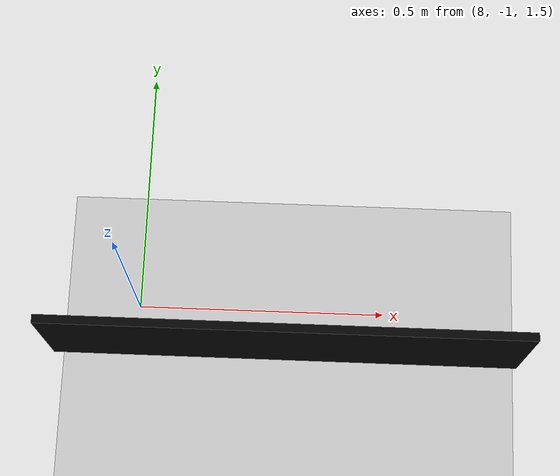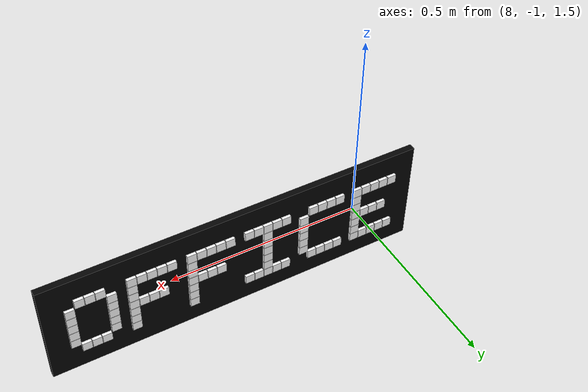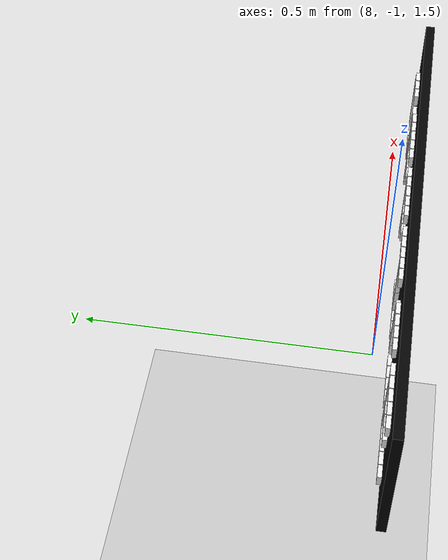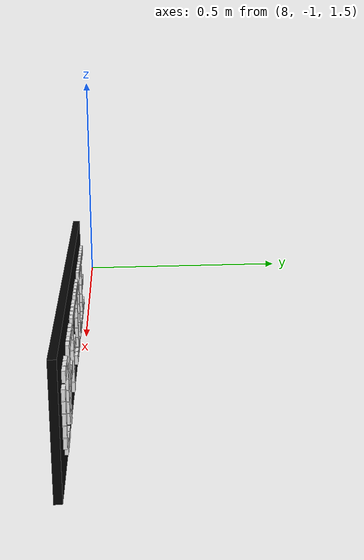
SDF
<sdf version="1.9">
 <world name="default">
  <model name="ground_plane">
   <static>true</static>
   <pose>5.15 0 -0.05 0 0 0</pose>
   <link name="body">
    <collision name="collision"><geometry><box><size>14.3 12 0.1</size></box></geometry></collision>
    <visual name="visual">
     <geometry><box><size>14.3 12 0.1</size></box></geometry>
     <material><ambient>0.8 0.8 0.8 1</ambient><diffuse>0.8 0.8 0.8 1</diffuse></material>
    </visual>
   </link>
  </model>
  <model name="readable_r3geo_base_r009_right_2_entrance_corridor">
   <static>true</static>
   <pose>8.3 -1.05 1.43 0 0 3.14159265359</pose>
   <link name="lettering">
    <visual name="backboard">
     <geometry><box><size>1.02 0.018 0.3</size></box></geometry>
     <material>
      <ambient>.015 .015 .015 1</ambient>
      <diffuse>.015 .015 .015 1</diffuse>
      <emissive>.015 .015 .015 1</emissive>
     </material>
     <cast_shadows>false</cast_shadows>
    </visual>
    <visual name="letter_0_0_1">
     <pose>-0.416 -0.014 0.078 0 0 0</pose>
     <geometry><box><size>0.024439999999999996 0.008 0.024439999999999996</size></box></geometry>
     <material>
      <ambient>.96 .96 .96 1</ambient>
      <diffuse>.96 .96 .96 1</diffuse>
      <emissive>.96 .96 .96 1</emissive>
     </material>
     <cast_shadows>false</cast_shadows>
    </visual>
    <visual name="letter_0_0_2">
     <pose>-0.39 -0.014 0.078 0 0 0</pose>
     <geometry><box><size>0.024439999999999996 0.008 0.024439999999999996</size></box></geometry>
     <material>
      <ambient>.96 .96 .96 1</ambient>
      <diffuse>.96 .96 .96 1</diffuse>
      <emissive>.96 .96 .96 1</emissive>
     </material>
     <cast_shadows>false</cast_shadows>
    </visual>
    <visual name="letter_0_0_3">
     <pose>-0.364 -0.014 0.078 0 0 0</pose>
     <geometry><box><size>0.024439999999999996 0.008 0.024439999999999996</size></box></geometry>
     <material>
      <ambient>.96 .96 .96 1</ambient>
      <diffuse>.96 .96 .96 1</diffuse>
      <emissive>.96 .96 .96 1</emissive>
     </material>
     <cast_shadows>false</cast_shadows>
    </visual>
    <visual name="letter_0_1_0">
     <pose>-0.442 -0.014 0.052 0 0 0</pose>
     <geometry><box><size>0.024439999999999996 0.008 0.024439999999999996</size></box></geometry>
     <material>
      <ambient>.96 .96 .96 1</ambient>
      <diffuse>.96 .96 .96 1</diffuse>
      <emissive>.96 .96 .96 1</emissive>
     </material>
     <cast_shadows>false</cast_shadows>
    </visual>
    <visual name="letter_0_1_4">
     <pose>-0.338 -0.014 0.052 0 0 0</pose>
     <geometry><box><size>0.024439999999999996 0.008 0.024439999999999996</size></box></geometry>
     <material>
      <ambient>.96 .96 .96 1</ambient>
      <diffuse>.96 .96 .96 1</diffuse>
      <emissive>.96 .96 .96 1</emissive>
     </material>
     <cast_shadows>false</cast_shadows>
    </visual>
    <visual name="letter_0_2_0">
     <pose>-0.442 -0.014 0.026 0 0 0</pose>
     <geometry><box><size>0.024439999999999996 0.008 0.024439999999999996</size></box></geometry>
     <material>
      <ambient>.96 .96 .96 1</ambient>
      <diffuse>.96 .96 .96 1</diffuse>
      <emissive>.96 .96 .96 1</emissive>
     </material>
     <cast_shadows>false</cast_shadows>
    </visual>
    <visual name="letter_0_2_4">
     <pose>-0.338 -0.014 0.026 0 0 0</pose>
     <geometry><box><size>0.024439999999999996 0.008 0.024439999999999996</size></box></geometry>
     <material>
      <ambient>.96 .96 .96 1</ambient>
      <diffuse>.96 .96 .96 1</diffuse>
      <emissive>.96 .96 .96 1</emissive>
     </material>
     <cast_shadows>false</cast_shadows>
    </visual>
    <visual name="letter_0_3_0">
     <pose>-0.442 -0.014 0 0 0 0</pose>
     <geometry><box><size>0.024439999999999996 0.008 0.024439999999999996</size></box></geometry>
     <material>
      <ambient>.96 .96 .96 1</ambient>
      <diffuse>.96 .96 .96 1</diffuse>
      <emissive>.96 .96 .96 1</emissive>
     </material>
     <cast_shadows>false</cast_shadows>
    </visual>
    <visual name="letter_0_3_4">
     <pose>-0.338 -0.014 0 0 0 0</pose>
     <geometry><box><size>0.024439999999999996 0.008 0.024439999999999996</size></box></geometry>
     <material>
      <ambient>.96 .96 .96 1</ambient>
      <diffuse>.96 .96 .96 1</diffuse>
      <emissive>.96 .96 .96 1</emissive>
     </material>
     <cast_shadows>false</cast_shadows>
    </visual>
    <visual name="letter_0_4_0">
     <pose>-0.442 -0.014 -0.026 0 0 0</pose>
     <geometry><box><size>0.024439999999999996 0.008 0.024439999999999996</size></box></geometry>
     <material>
      <ambient>.96 .96 .96 1</ambient>
      <diffuse>.96 .96 .96 1</diffuse>
      <emissive>.96 .96 .96 1</emissive>
     </material>
     <cast_shadows>false</cast_shadows>
    </visual>
    <visual name="letter_0_4_4">
     <pose>-0.338 -0.014 -0.026 0 0 0</pose>
     <geometry><box><size>0.024439999999999996 0.008 0.024439999999999996</size></box></geometry>
     <material>
      <ambient>.96 .96 .96 1</ambient>
      <diffuse>.96 .96 .96 1</diffuse>
      <emissive>.96 .96 .96 1</emissive>
     </material>
     <cast_shadows>false</cast_shadows>
    </visual>
    <visual name="letter_0_5_0">
     <pose>-0.442 -0.014 -0.052 0 0 0</pose>
     <geometry><box><size>0.024439999999999996 0.008 0.024439999999999996</size></box></geometry>
     <material>
      <ambient>.96 .96 .96 1</ambient>
      <diffuse>.96 .96 .96 1</diffuse>
      <emissive>.96 .96 .96 1</emissive>
     </material>
     <cast_shadows>false</cast_shadows>
    </visual>
    <visual name="letter_0_5_4">
     <pose>-0.338 -0.014 -0.052 0 0 0</pose>
     <geometry><box><size>0.024439999999999996 0.008 0.024439999999999996</size></box></geometry>
     <material>
      <ambient>.96 .96 .96 1</ambient>
      <diffuse>.96 .96 .96 1</diffuse>
      <emissive>.96 .96 .96 1</emissive>
     </material>
     <cast_shadows>false</cast_shadows>
    </visual>
    <visual name="letter_0_6_1">
     <pose>-0.416 -0.014 -0.078 0 0 0</pose>
     <geometry><box><size>0.024439999999999996 0.008 0.024439999999999996</size></box></geometry>
     <material>
      <ambient>.96 .96 .96 1</ambient>
      <diffuse>.96 .96 .96 1</diffuse>
      <emissive>.96 .96 .96 1</emissive>
     </material>
     <cast_shadows>false</cast_shadows>
    </visual>
    <visual name="letter_0_6_2">
     <pose>-0.39 -0.014 -0.078 0 0 0</pose>
     <geometry><box><size>0.024439999999999996 0.008 0.024439999999999996</size></box></geometry>
     <material>
      <ambient>.96 .96 .96 1</ambient>
      <diffuse>.96 .96 .96 1</diffuse>
      <emissive>.96 .96 .96 1</emissive>
     </material>
     <cast_shadows>false</cast_shadows>
    </visual>
    <visual name="letter_0_6_3">
     <pose>-0.364 -0.014 -0.078 0 0 0</pose>
     <geometry><box><size>0.024439999999999996 0.008 0.024439999999999996</size></box></geometry>
     <material>
      <ambient>.96 .96 .96 1</ambient>
      <diffuse>.96 .96 .96 1</diffuse>
      <emissive>.96 .96 .96 1</emissive>
     </material>
     <cast_shadows>false</cast_shadows>
    </visual>
    <visual name="letter_1_0_0">
     <pose>-0.286 -0.014 0.078 0 0 0</pose>
     <geometry><box><size>0.024439999999999996 0.008 0.024439999999999996</size></box></geometry>
     <material>
      <ambient>.96 .96 .96 1</ambient>
      <diffuse>.96 .96 .96 1</diffuse>
      <emissive>.96 .96 .96 1</emissive>
     </material>
     <cast_shadows>false</cast_shadows>
    </visual>
    <visual name="letter_1_0_1">
     <pose>-0.26 -0.014 0.078 0 0 0</pose>
     <geometry><box><size>0.024439999999999996 0.008 0.024439999999999996</size></box></geometry>
     <material>
      <ambient>.96 .96 .96 1</ambient>
      <diffuse>.96 .96 .96 1</diffuse>
      <emissive>.96 .96 .96 1</emissive>
     </material>
     <cast_shadows>false</cast_shadows>
    </visual>
    <visual name="letter_1_0_2">
     <pose>-0.234 -0.014 0.078 0 0 0</pose>
     <geometry><box><size>0.024439999999999996 0.008 0.024439999999999996</size></box></geometry>
     <material>
      <ambient>.96 .96 .96 1</ambient>
      <diffuse>.96 .96 .96 1</diffuse>
      <emissive>.96 .96 .96 1</emissive>
     </material>
     <cast_shadows>false</cast_shadows>
    </visual>
    <visual name="letter_1_0_3">
     <pose>-0.208 -0.014 0.078 0 0 0</pose>
     <geometry><box><size>0.024439999999999996 0.008 0.024439999999999996</size></box></geometry>
     <material>
      <ambient>.96 .96 .96 1</ambient>
      <diffuse>.96 .96 .96 1</diffuse>
      <emissive>.96 .96 .96 1</emissive>
     </material>
     <cast_shadows>false</cast_shadows>
    </visual>
    <visual name="letter_1_0_4">
     <pose>-0.182 -0.014 0.078 0 0 0</pose>
     <geometry><box><size>0.024439999999999996 0.008 0.024439999999999996</size></box></geometry>
     <material>
      <ambient>.96 .96 .96 1</ambient>
      <diffuse>.96 .96 .96 1</diffuse>
      <emissive>.96 .96 .96 1</emissive>
     </material>
     <cast_shadows>false</cast_shadows>
    </visual>
    <visual name="letter_1_1_0">
     <pose>-0.286 -0.014 0.052 0 0 0</pose>
     <geometry><box><size>0.024439999999999996 0.008 0.024439999999999996</size></box></geometry>
     <material>
      <ambient>.96 .96 .96 1</ambient>
      <diffuse>.96 .96 .96 1</diffuse>
      <emissive>.96 .96 .96 1</emissive>
     </material>
     <cast_shadows>false</cast_shadows>
    </visual>
    <visual name="letter_1_2_0">
     <pose>-0.286 -0.014 0.026 0 0 0</pose>
     <geometry><box><size>0.024439999999999996 0.008 0.024439999999999996</size></box></geometry>
     <material>
      <ambient>.96 .96 .96 1</ambient>
      <diffuse>.96 .96 .96 1</diffuse>
      <emissive>.96 .96 .96 1</emissive>
     </material>
     <cast_shadows>false</cast_shadows>
    </visual>
    <visual name="letter_1_3_0">
     <pose>-0.286 -0.014 0 0 0 0</pose>
     <geometry><box><size>0.024439999999999996 0.008 0.024439999999999996</size></box></geometry>
     <material>
      <ambient>.96 .96 .96 1</ambient>
      <diffuse>.96 .96 .96 1</diffuse>
      <emissive>.96 .96 .96 1</emissive>
     </material>
     <cast_shadows>false</cast_shadows>
    </visual>
    <visual name="letter_1_3_1">
     <pose>-0.26 -0.014 0 0 0 0</pose>
     <geometry><box><size>0.024439999999999996 0.008 0.024439999999999996</size></box></geometry>
     <material>
      <ambient>.96 .96 .96 1</ambient>
      <diffuse>.96 .96 .96 1</diffuse>
      <emissive>.96 .96 .96 1</emissive>
     </material>
     <cast_shadows>false</cast_shadows>
    </visual>
    <visual name="letter_1_3_2">
     <pose>-0.234 -0.014 0 0 0 0</pose>
     <geometry><box><size>0.024439999999999996 0.008 0.024439999999999996</size></box></geometry>
     <material>
      <ambient>.96 .96 .96 1</ambient>
      <diffuse>.96 .96 .96 1</diffuse>
      <emissive>.96 .96 .96 1</emissive>
     </material>
     <cast_shadows>false</cast_shadows>
    </visual>
    <visual name="letter_1_3_3">
     <pose>-0.208 -0.014 0 0 0 0</pose>
     <geometry><box><size>0.024439999999999996 0.008 0.024439999999999996</size></box></geometry>
     <material>
      <ambient>.96 .96 .96 1</ambient>
      <diffuse>.96 .96 .96 1</diffuse>
      <emissive>.96 .96 .96 1</emissive>
     </material>
     <cast_shadows>false</cast_shadows>
    </visual>
    <visual name="letter_1_4_0">
     <pose>-0.286 -0.014 -0.026 0 0 0</pose>
     <geometry><box><size>0.024439999999999996 0.008 0.024439999999999996</size></box></geometry>
     <material>
      <ambient>.96 .96 .96 1</ambient>
      <diffuse>.96 .96 .96 1</diffuse>
      <emissive>.96 .96 .96 1</emissive>
     </material>
     <cast_shadows>false</cast_shadows>
    </visual>
    <visual name="letter_1_5_0">
     <pose>-0.286 -0.014 -0.052 0 0 0</pose>
     <geometry><box><size>0.024439999999999996 0.008 0.024439999999999996</size></box></geometry>
     <material>
      <ambient>.96 .96 .96 1</ambient>
      <diffuse>.96 .96 .96 1</diffuse>
      <emissive>.96 .96 .96 1</emissive>
     </material>
     <cast_shadows>false</cast_shadows>
    </visual>
    <visual name="letter_1_6_0">
     <pose>-0.286 -0.014 -0.078 0 0 0</pose>
     <geometry><box><size>0.024439999999999996 0.008 0.024439999999999996</size></box></geometry>
     <material>
      <ambient>.96 .96 .96 1</ambient>
      <diffuse>.96 .96 .96 1</diffuse>
      <emissive>.96 .96 .96 1</emissive>
     </material>
     <cast_shadows>false</cast_shadows>
    </visual>
    <visual name="letter_2_0_0">
     <pose>-0.13 -0.014 0.078 0 0 0</pose>
     <geometry><box><size>0.024439999999999996 0.008 0.024439999999999996</size></box></geometry>
     <material>
      <ambient>.96 .96 .96 1</ambient>
      <diffuse>.96 .96 .96 1</diffuse>
      <emissive>.96 .96 .96 1</emissive>
     </material>
     <cast_shadows>false</cast_shadows>
    </visual>
    <visual name="letter_2_0_1">
     <pose>-0.104 -0.014 0.078 0 0 0</pose>
     <geometry><box><size>0.024439999999999996 0.008 0.024439999999999996</size></box></geometry>
     <material>
      <ambient>.96 .96 .96 1</ambient>
      <diffuse>.96 .96 .96 1</diffuse>
      <emissive>.96 .96 .96 1</emissive>
     </material>
     <cast_shadows>false</cast_shadows>
    </visual>
    <visual name="letter_2_0_2">
     <pose>-0.078 -0.014 0.078 0 0 0</pose>
     <geometry><box><size>0.024439999999999996 0.008 0.024439999999999996</size></box></geometry>
     <material>
      <ambient>.96 .96 .96 1</ambient>
      <diffuse>.96 .96 .96 1</diffuse>
      <emissive>.96 .96 .96 1</emissive>
     </material>
     <cast_shadows>false</cast_shadows>
    </visual>
    <visual name="letter_2_0_3">
     <pose>-0.052 -0.014 0.078 0 0 0</pose>
     <geometry><box><size>0.024439999999999996 0.008 0.024439999999999996</size></box></geometry>
     <material>
      <ambient>.96 .96 .96 1</ambient>
      <diffuse>.96 .96 .96 1</diffuse>
      <emissive>.96 .96 .96 1</emissive>
     </material>
     <cast_shadows>false</cast_shadows>
    </visual>
    <visual name="letter_2_0_4">
     <pose>-0.026 -0.014 0.078 0 0 0</pose>
     <geometry><box><size>0.024439999999999996 0.008 0.024439999999999996</size></box></geometry>
     <material>
      <ambient>.96 .96 .96 1</ambient>
      <diffuse>.96 .96 .96 1</diffuse>
      <emissive>.96 .96 .96 1</emissive>
     </material>
     <cast_shadows>false</cast_shadows>
    </visual>
    <visual name="letter_2_1_0">
     <pose>-0.13 -0.014 0.052 0 0 0</pose>
     <geometry><box><size>0.024439999999999996 0.008 0.024439999999999996</size></box></geometry>
     <material>
      <ambient>.96 .96 .96 1</ambient>
      <diffuse>.96 .96 .96 1</diffuse>
      <emissive>.96 .96 .96 1</emissive>
     </material>
     <cast_shadows>false</cast_shadows>
    </visual>
    <visual name="letter_2_2_0">
     <pose>-0.13 -0.014 0.026 0 0 0</pose>
     <geometry><box><size>0.024439999999999996 0.008 0.024439999999999996</size></box></geometry>
     <material>
      <ambient>.96 .96 .96 1</ambient>
      <diffuse>.96 .96 .96 1</diffuse>
      <emissive>.96 .96 .96 1</emissive>
     </material>
     <cast_shadows>false</cast_shadows>
    </visual>
    <visual name="letter_2_3_0">
     <pose>-0.13 -0.014 0 0 0 0</pose>
     <geometry><box><size>0.024439999999999996 0.008 0.024439999999999996</size></box></geometry>
     <material>
      <ambient>.96 .96 .96 1</ambient>
      <diffuse>.96 .96 .96 1</diffuse>
      <emissive>.96 .96 .96 1</emissive>
     </material>
     <cast_shadows>false</cast_shadows>
    </visual>
    <visual name="letter_2_3_1">
     <pose>-0.104 -0.014 0 0 0 0</pose>
     <geometry><box><size>0.024439999999999996 0.008 0.024439999999999996</size></box></geometry>
     <material>
      <ambient>.96 .96 .96 1</ambient>
      <diffuse>.96 .96 .96 1</diffuse>
      <emissive>.96 .96 .96 1</emissive>
     </material>
     <cast_shadows>false</cast_shadows>
    </visual>
    <visual name="letter_2_3_2">
     <pose>-0.078 -0.014 0 0 0 0</pose>
     <geometry><box><size>0.024439999999999996 0.008 0.024439999999999996</size></box></geometry>
     <material>
      <ambient>.96 .96 .96 1</ambient>
      <diffuse>.96 .96 .96 1</diffuse>
      <emissive>.96 .96 .96 1</emissive>
     </material>
     <cast_shadows>false</cast_shadows>
    </visual>
    <visual name="letter_2_3_3">
     <pose>-0.052 -0.014 0 0 0 0</pose>
     <geometry><box><size>0.024439999999999996 0.008 0.024439999999999996</size></box></geometry>
     <material>
      <ambient>.96 .96 .96 1</ambient>
      <diffuse>.96 .96 .96 1</diffuse>
      <emissive>.96 .96 .96 1</emissive>
     </material>
     <cast_shadows>false</cast_shadows>
    </visual>
    <visual name="letter_2_4_0">
     <pose>-0.13 -0.014 -0.026 0 0 0</pose>
     <geometry><box><size>0.024439999999999996 0.008 0.024439999999999996</size></box></geometry>
     <material>
      <ambient>.96 .96 .96 1</ambient>
      <diffuse>.96 .96 .96 1</diffuse>
      <emissive>.96 .96 .96 1</emissive>
     </material>
     <cast_shadows>false</cast_shadows>
    </visual>
    <visual name="letter_2_5_0">
     <pose>-0.13 -0.014 -0.052 0 0 0</pose>
     <geometry><box><size>0.024439999999999996 0.008 0.024439999999999996</size></box></geometry>
     <material>
      <ambient>.96 .96 .96 1</ambient>
      <diffuse>.96 .96 .96 1</diffuse>
      <emissive>.96 .96 .96 1</emissive>
     </material>
     <cast_shadows>false</cast_shadows>
    </visual>
    <visual name="letter_2_6_0">
     <pose>-0.13 -0.014 -0.078 0 0 0</pose>
     <geometry><box><size>0.024439999999999996 0.008 0.024439999999999996</size></box></geometry>
     <material>
      <ambient>.96 .96 .96 1</ambient>
      <diffuse>.96 .96 .96 1</diffuse>
      <emissive>.96 .96 .96 1</emissive>
     </material>
     <cast_shadows>false</cast_shadows>
    </visual>
    <visual name="letter_3_0_0">
     <pose>0.026 -0.014 0.078 0 0 0</pose>
     <geometry><box><size>0.024439999999999996 0.008 0.024439999999999996</size></box></geometry>
     <material>
      <ambient>.96 .96 .96 1</ambient>
      <diffuse>.96 .96 .96 1</diffuse>
      <emissive>.96 .96 .96 1</emissive>
     </material>
     <cast_shadows>false</cast_shadows>
    </visual>
    <visual name="letter_3_0_1">
     <pose>0.052 -0.014 0.078 0 0 0</pose>
     <geometry><box><size>0.024439999999999996 0.008 0.024439999999999996</size></box></geometry>
     <material>
      <ambient>.96 .96 .96 1</ambient>
      <diffuse>.96 .96 .96 1</diffuse>
      <emissive>.96 .96 .96 1</emissive>
     </material>
     <cast_shadows>false</cast_shadows>
    </visual>
    <visual name="letter_3_0_2">
     <pose>0.078 -0.014 0.078 0 0 0</pose>
     <geometry><box><size>0.024439999999999996 0.008 0.024439999999999996</size></box></geometry>
     <material>
      <ambient>.96 .96 .96 1</ambient>
      <diffuse>.96 .96 .96 1</diffuse>
      <emissive>.96 .96 .96 1</emissive>
     </material>
     <cast_shadows>false</cast_shadows>
    </visual>
    <visual name="letter_3_0_3">
     <pose>0.104 -0.014 0.078 0 0 0</pose>
     <geometry><box><size>0.024439999999999996 0.008 0.024439999999999996</size></box></geometry>
     <material>
      <ambient>.96 .96 .96 1</ambient>
      <diffuse>.96 .96 .96 1</diffuse>
      <emissive>.96 .96 .96 1</emissive>
     </material>
     <cast_shadows>false</cast_shadows>
    </visual>
    <visual name="letter_3_0_4">
     <pose>0.13 -0.014 0.078 0 0 0</pose>
     <geometry><box><size>0.024439999999999996 0.008 0.024439999999999996</size></box></geometry>
     <material>
      <ambient>.96 .96 .96 1</ambient>
      <diffuse>.96 .96 .96 1</diffuse>
      <emissive>.96 .96 .96 1</emissive>
     </material>
     <cast_shadows>false</cast_shadows>
    </visual>
    <visual name="letter_3_1_2">
     <pose>0.078 -0.014 0.052 0 0 0</pose>
     <geometry><box><size>0.024439999999999996 0.008 0.024439999999999996</size></box></geometry>
     <material>
      <ambient>.96 .96 .96 1</ambient>
      <diffuse>.96 .96 .96 1</diffuse>
      <emissive>.96 .96 .96 1</emissive>
     </material>
     <cast_shadows>false</cast_shadows>
    </visual>
    <visual name="letter_3_2_2">
     <pose>0.078 -0.014 0.026 0 0 0</pose>
     <geometry><box><size>0.024439999999999996 0.008 0.024439999999999996</size></box></geometry>
     <material>
      <ambient>.96 .96 .96 1</ambient>
      <diffuse>.96 .96 .96 1</diffuse>
      <emissive>.96 .96 .96 1</emissive>
     </material>
     <cast_shadows>false</cast_shadows>
    </visual>
    <visual name="letter_3_3_2">
     <pose>0.078 -0.014 0 0 0 0</pose>
     <geometry><box><size>0.024439999999999996 0.008 0.024439999999999996</size></box></geometry>
     <material>
      <ambient>.96 .96 .96 1</ambient>
      <diffuse>.96 .96 .96 1</diffuse>
      <emissive>.96 .96 .96 1</emissive>
     </material>
     <cast_shadows>false</cast_shadows>
    </visual>
    <visual name="letter_3_4_2">
     <pose>0.078 -0.014 -0.026 0 0 0</pose>
     <geometry><box><size>0.024439999999999996 0.008 0.024439999999999996</size></box></geometry>
     <material>
      <ambient>.96 .96 .96 1</ambient>
      <diffuse>.96 .96 .96 1</diffuse>
      <emissive>.96 .96 .96 1</emissive>
     </material>
     <cast_shadows>false</cast_shadows>
    </visual>
    <visual name="letter_3_5_2">
     <pose>0.078 -0.014 -0.052 0 0 0</pose>
     <geometry><box><size>0.024439999999999996 0.008 0.024439999999999996</size></box></geometry>
     <material>
      <ambient>.96 .96 .96 1</ambient>
      <diffuse>.96 .96 .96 1</diffuse>
      <emissive>.96 .96 .96 1</emissive>
     </material>
     <cast_shadows>false</cast_shadows>
    </visual>
    <visual name="letter_3_6_0">
     <pose>0.026 -0.014 -0.078 0 0 0</pose>
     <geometry><box><size>0.024439999999999996 0.008 0.024439999999999996</size></box></geometry>
     <material>
      <ambient>.96 .96 .96 1</ambient>
      <diffuse>.96 .96 .96 1</diffuse>
      <emissive>.96 .96 .96 1</emissive>
     </material>
     <cast_shadows>false</cast_shadows>
    </visual>
    <visual name="letter_3_6_1">
     <pose>0.052 -0.014 -0.078 0 0 0</pose>
     <geometry><box><size>0.024439999999999996 0.008 0.024439999999999996</size></box></geometry>
     <material>
      <ambient>.96 .96 .96 1</ambient>
      <diffuse>.96 .96 .96 1</diffuse>
      <emissive>.96 .96 .96 1</emissive>
     </material>
     <cast_shadows>false</cast_shadows>
    </visual>
    <visual name="letter_3_6_2">
     <pose>0.078 -0.014 -0.078 0 0 0</pose>
     <geometry><box><size>0.024439999999999996 0.008 0.024439999999999996</size></box></geometry>
     <material>
      <ambient>.96 .96 .96 1</ambient>
      <diffuse>.96 .96 .96 1</diffuse>
      <emissive>.96 .96 .96 1</emissive>
     </material>
     <cast_shadows>false</cast_shadows>
    </visual>
    <visual name="letter_3_6_3">
     <pose>0.104 -0.014 -0.078 0 0 0</pose>
     <geometry><box><size>0.024439999999999996 0.008 0.024439999999999996</size></box></geometry>
     <material>
      <ambient>.96 .96 .96 1</ambient>
      <diffuse>.96 .96 .96 1</diffuse>
      <emissive>.96 .96 .96 1</emissive>
     </material>
     <cast_shadows>false</cast_shadows>
    </visual>
    <visual name="letter_3_6_4">
     <pose>0.13 -0.014 -0.078 0 0 0</pose>
     <geometry><box><size>0.024439999999999996 0.008 0.024439999999999996</size></box></geometry>
     <material>
      <ambient>.96 .96 .96 1</ambient>
      <diffuse>.96 .96 .96 1</diffuse>
      <emissive>.96 .96 .96 1</emissive>
     </material>
     <cast_shadows>false</cast_shadows>
    </visual>
    <visual name="letter_4_0_1">
     <pose>0.208 -0.014 0.078 0 0 0</pose>
     <geometry><box><size>0.024439999999999996 0.008 0.024439999999999996</size></box></geometry>
     <material>
      <ambient>.96 .96 .96 1</ambient>
      <diffuse>.96 .96 .96 1</diffuse>
      <emissive>.96 .96 .96 1</emissive>
     </material>
     <cast_shadows>false</cast_shadows>
    </visual>
    <visual name="letter_4_0_2">
     <pose>0.234 -0.014 0.078 0 0 0</pose>
     <geometry><box><size>0.024439999999999996 0.008 0.024439999999999996</size></box></geometry>
     <material>
      <ambient>.96 .96 .96 1</ambient>
      <diffuse>.96 .96 .96 1</diffuse>
      <emissive>.96 .96 .96 1</emissive>
     </material>
     <cast_shadows>false</cast_shadows>
    </visual>
    <visual name="letter_4_0_3">
     <pose>0.26 -0.014 0.078 0 0 0</pose>
     <geometry><box><size>0.024439999999999996 0.008 0.024439999999999996</size></box></geometry>
     <material>
      <ambient>.96 .96 .96 1</ambient>
      <diffuse>.96 .96 .96 1</diffuse>
      <emissive>.96 .96 .96 1</emissive>
     </material>
     <cast_shadows>false</cast_shadows>
    </visual>
    <visual name="letter_4_0_4">
     <pose>0.286 -0.014 0.078 0 0 0</pose>
     <geometry><box><size>0.024439999999999996 0.008 0.024439999999999996</size></box></geometry>
     <material>
      <ambient>.96 .96 .96 1</ambient>
      <diffuse>.96 .96 .96 1</diffuse>
      <emissive>.96 .96 .96 1</emissive>
     </material>
     <cast_shadows>false</cast_shadows>
    </visual>
    <visual name="letter_4_1_0">
     <pose>0.182 -0.014 0.052 0 0 0</pose>
     <geometry><box><size>0.024439999999999996 0.008 0.024439999999999996</size></box></geometry>
     <material>
      <ambient>.96 .96 .96 1</ambient>
      <diffuse>.96 .96 .96 1</diffuse>
      <emissive>.96 .96 .96 1</emissive>
     </material>
     <cast_shadows>false</cast_shadows>
    </visual>
    <visual name="letter_4_2_0">
     <pose>0.182 -0.014 0.026 0 0 0</pose>
     <geometry><box><size>0.024439999999999996 0.008 0.024439999999999996</size></box></geometry>
     <material>
      <ambient>.96 .96 .96 1</ambient>
      <diffuse>.96 .96 .96 1</diffuse>
      <emissive>.96 .96 .96 1</emissive>
     </material>
     <cast_shadows>false</cast_shadows>
    </visual>
    <visual name="letter_4_3_0">
     <pose>0.182 -0.014 0 0 0 0</pose>
     <geometry><box><size>0.024439999999999996 0.008 0.024439999999999996</size></box></geometry>
     <material>
      <ambient>.96 .96 .96 1</ambient>
      <diffuse>.96 .96 .96 1</diffuse>
      <emissive>.96 .96 .96 1</emissive>
     </material>
     <cast_shadows>false</cast_shadows>
    </visual>
    <visual name="letter_4_4_0">
     <pose>0.182 -0.014 -0.026 0 0 0</pose>
     <geometry><box><size>0.024439999999999996 0.008 0.024439999999999996</size></box></geometry>
     <material>
      <ambient>.96 .96 .96 1</ambient>
      <diffuse>.96 .96 .96 1</diffuse>
      <emissive>.96 .96 .96 1</emissive>
     </material>
     <cast_shadows>false</cast_shadows>
    </visual>
    <visual name="letter_4_5_0">
     <pose>0.182 -0.014 -0.052 0 0 0</pose>
     <geometry><box><size>0.024439999999999996 0.008 0.024439999999999996</size></box></geometry>
     <material>
      <ambient>.96 .96 .96 1</ambient>
      <diffuse>.96 .96 .96 1</diffuse>
      <emissive>.96 .96 .96 1</emissive>
     </material>
     <cast_shadows>false</cast_shadows>
    </visual>
    <visual name="letter_4_6_1">
     <pose>0.208 -0.014 -0.078 0 0 0</pose>
     <geometry><box><size>0.024439999999999996 0.008 0.024439999999999996</size></box></geometry>
     <material>
      <ambient>.96 .96 .96 1</ambient>
      <diffuse>.96 .96 .96 1</diffuse>
      <emissive>.96 .96 .96 1</emissive>
     </material>
     <cast_shadows>false</cast_shadows>
    </visual>
    <visual name="letter_4_6_2">
     <pose>0.234 -0.014 -0.078 0 0 0</pose>
     <geometry><box><size>0.024439999999999996 0.008 0.024439999999999996</size></box></geometry>
     <material>
      <ambient>.96 .96 .96 1</ambient>
      <diffuse>.96 .96 .96 1</diffuse>
      <emissive>.96 .96 .96 1</emissive>
     </material>
     <cast_shadows>false</cast_shadows>
    </visual>
    <visual name="letter_4_6_3">
     <pose>0.26 -0.014 -0.078 0 0 0</pose>
     <geometry><box><size>0.024439999999999996 0.008 0.024439999999999996</size></box></geometry>
     <material>
      <ambient>.96 .96 .96 1</ambient>
      <diffuse>.96 .96 .96 1</diffuse>
      <emissive>.96 .96 .96 1</emissive>
     </material>
     <cast_shadows>false</cast_shadows>
    </visual>
    <visual name="letter_4_6_4">
     <pose>0.286 -0.014 -0.078 0 0 0</pose>
     <geometry><box><size>0.024439999999999996 0.008 0.024439999999999996</size></box></geometry>
     <material>
      <ambient>.96 .96 .96 1</ambient>
      <diffuse>.96 .96 .96 1</diffuse>
      <emissive>.96 .96 .96 1</emissive>
     </material>
     <cast_shadows>false</cast_shadows>
    </visual>
    <visual name="letter_5_0_0">
     <pose>0.338 -0.014 0.078 0 0 0</pose>
     <geometry><box><size>0.024439999999999996 0.008 0.024439999999999996</size></box></geometry>
     <material>
      <ambient>.96 .96 .96 1</ambient>
      <diffuse>.96 .96 .96 1</diffuse>
      <emissive>.96 .96 .96 1</emissive>
     </material>
     <cast_shadows>false</cast_shadows>
    </visual>
    <visual name="letter_5_0_1">
     <pose>0.364 -0.014 0.078 0 0 0</pose>
     <geometry><box><size>0.024439999999999996 0.008 0.024439999999999996</size></box></geometry>
     <material>
      <ambient>.96 .96 .96 1</ambient>
      <diffuse>.96 .96 .96 1</diffuse>
      <emissive>.96 .96 .96 1</emissive>
     </material>
     <cast_shadows>false</cast_shadows>
    </visual>
    <visual name="letter_5_0_2">
     <pose>0.39 -0.014 0.078 0 0 0</pose>
     <geometry><box><size>0.024439999999999996 0.008 0.024439999999999996</size></box></geometry>
     <material>
      <ambient>.96 .96 .96 1</ambient>
      <diffuse>.96 .96 .96 1</diffuse>
      <emissive>.96 .96 .96 1</emissive>
     </material>
     <cast_shadows>false</cast_shadows>
    </visual>
    <visual name="letter_5_0_3">
     <pose>0.416 -0.014 0.078 0 0 0</pose>
     <geometry><box><size>0.024439999999999996 0.008 0.024439999999999996</size></box></geometry>
     <material>
      <ambient>.96 .96 .96 1</ambient>
      <diffuse>.96 .96 .96 1</diffuse>
      <emissive>.96 .96 .96 1</emissive>
     </material>
     <cast_shadows>false</cast_shadows>
    </visual>
    <visual name="letter_5_0_4">
     <pose>0.442 -0.014 0.078 0 0 0</pose>
     <geometry><box><size>0.024439999999999996 0.008 0.024439999999999996</size></box></geometry>
     <material>
      <ambient>.96 .96 .96 1</ambient>
      <diffuse>.96 .96 .96 1</diffuse>
      <emissive>.96 .96 .96 1</emissive>
     </material>
     <cast_shadows>false</cast_shadows>
    </visual>
    <visual name="letter_5_1_0">
     <pose>0.338 -0.014 0.052 0 0 0</pose>
     <geometry><box><size>0.024439999999999996 0.008 0.024439999999999996</size></box></geometry>
     <material>
      <ambient>.96 .96 .96 1</ambient>
      <diffuse>.96 .96 .96 1</diffuse>
      <emissive>.96 .96 .96 1</emissive>
     </material>
     <cast_shadows>false</cast_shadows>
    </visual>
    <visual name="letter_5_2_0">
     <pose>0.338 -0.014 0.026 0 0 0</pose>
     <geometry><box><size>0.024439999999999996 0.008 0.024439999999999996</size></box></geometry>
     <material>
      <ambient>.96 .96 .96 1</ambient>
      <diffuse>.96 .96 .96 1</diffuse>
      <emissive>.96 .96 .96 1</emissive>
     </material>
     <cast_shadows>false</cast_shadows>
    </visual>
    <visual name="letter_5_3_0">
     <pose>0.338 -0.014 0 0 0 0</pose>
     <geometry><box><size>0.024439999999999996 0.008 0.024439999999999996</size></box></geometry>
     <material>
      <ambient>.96 .96 .96 1</ambient>
      <diffuse>.96 .96 .96 1</diffuse>
      <emissive>.96 .96 .96 1</emissive>
     </material>
     <cast_shadows>false</cast_shadows>
    </visual>
    <visual name="letter_5_3_1">
     <pose>0.364 -0.014 0 0 0 0</pose>
     <geometry><box><size>0.024439999999999996 0.008 0.024439999999999996</size></box></geometry>
     <material>
      <ambient>.96 .96 .96 1</ambient>
      <diffuse>.96 .96 .96 1</diffuse>
      <emissive>.96 .96 .96 1</emissive>
     </material>
     <cast_shadows>false</cast_shadows>
    </visual>
    <visual name="letter_5_3_2">
     <pose>0.39 -0.014 0 0 0 0</pose>
     <geometry><box><size>0.024439999999999996 0.008 0.024439999999999996</size></box></geometry>
     <material>
      <ambient>.96 .96 .96 1</ambient>
      <diffuse>.96 .96 .96 1</diffuse>
      <emissive>.96 .96 .96 1</emissive>
     </material>
     <cast_shadows>false</cast_shadows>
    </visual>
    <visual name="letter_5_3_3">
     <pose>0.416 -0.014 0 0 0 0</pose>
     <geometry><box><size>0.024439999999999996 0.008 0.024439999999999996</size></box></geometry>
     <material>
      <ambient>.96 .96 .96 1</ambient>
      <diffuse>.96 .96 .96 1</diffuse>
      <emissive>.96 .96 .96 1</emissive>
     </material>
     <cast_shadows>false</cast_shadows>
    </visual>
    <visual name="letter_5_4_0">
     <pose>0.338 -0.014 -0.026 0 0 0</pose>
     <geometry><box><size>0.024439999999999996 0.008 0.024439999999999996</size></box></geometry>
     <material>
      <ambient>.96 .96 .96 1</ambient>
      <diffuse>.96 .96 .96 1</diffuse>
      <emissive>.96 .96 .96 1</emissive>
     </material>
     <cast_shadows>false</cast_shadows>
    </visual>
    <visual name="letter_5_5_0">
     <pose>0.338 -0.014 -0.052 0 0 0</pose>
     <geometry><box><size>0.024439999999999996 0.008 0.024439999999999996</size></box></geometry>
     <material>
      <ambient>.96 .96 .96 1</ambient>
      <diffuse>.96 .96 .96 1</diffuse>
      <emissive>.96 .96 .96 1</emissive>
     </material>
     <cast_shadows>false</cast_shadows>
    </visual>
    <visual name="letter_5_6_0">
     <pose>0.338 -0.014 -0.078 0 0 0</pose>
     <geometry><box><size>0.024439999999999996 0.008 0.024439999999999996</size></box></geometry>
     <material>
      <ambient>.96 .96 .96 1</ambient>
      <diffuse>.96 .96 .96 1</diffuse>
      <emissive>.96 .96 .96 1</emissive>
     </material>
     <cast_shadows>false</cast_shadows>
    </visual>
    <visual name="letter_5_6_1">
     <pose>0.364 -0.014 -0.078 0 0 0</pose>
     <geometry><box><size>0.024439999999999996 0.008 0.024439999999999996</size></box></geometry>
     <material>
      <ambient>.96 .96 .96 1</ambient>
      <diffuse>.96 .96 .96 1</diffuse>
      <emissive>.96 .96 .96 1</emissive>
     </material>
     <cast_shadows>false</cast_shadows>
    </visual>
    <visual name="letter_5_6_2">
     <pose>0.39 -0.014 -0.078 0 0 0</pose>
     <geometry><box><size>0.024439999999999996 0.008 0.024439999999999996</size></box></geometry>
     <material>
      <ambient>.96 .96 .96 1</ambient>
      <diffuse>.96 .96 .96 1</diffuse>
      <emissive>.96 .96 .96 1</emissive>
     </material>
     <cast_shadows>false</cast_shadows>
    </visual>
    <visual name="letter_5_6_3">
     <pose>0.416 -0.014 -0.078 0 0 0</pose>
     <geometry><box><size>0.024439999999999996 0.008 0.024439999999999996</size></box></geometry>
     <material>
      <ambient>.96 .96 .96 1</ambient>
      <diffuse>.96 .96 .96 1</diffuse>
      <emissive>.96 .96 .96 1</emissive>
     </material>
     <cast_shadows>false</cast_shadows>
    </visual>
    <visual name="letter_5_6_4">
     <pose>0.442 -0.014 -0.078 0 0 0</pose>
     <geometry><box><size>0.024439999999999996 0.008 0.024439999999999996</size></box></geometry>
     <material>
      <ambient>.96 .96 .96 1</ambient>
      <diffuse>.96 .96 .96 1</diffuse>
      <emissive>.96 .96 .96 1</emissive>
     </material>
     <cast_shadows>false</cast_shadows>
    </visual>
   </link>
  </model>
 </world>
</sdf>
